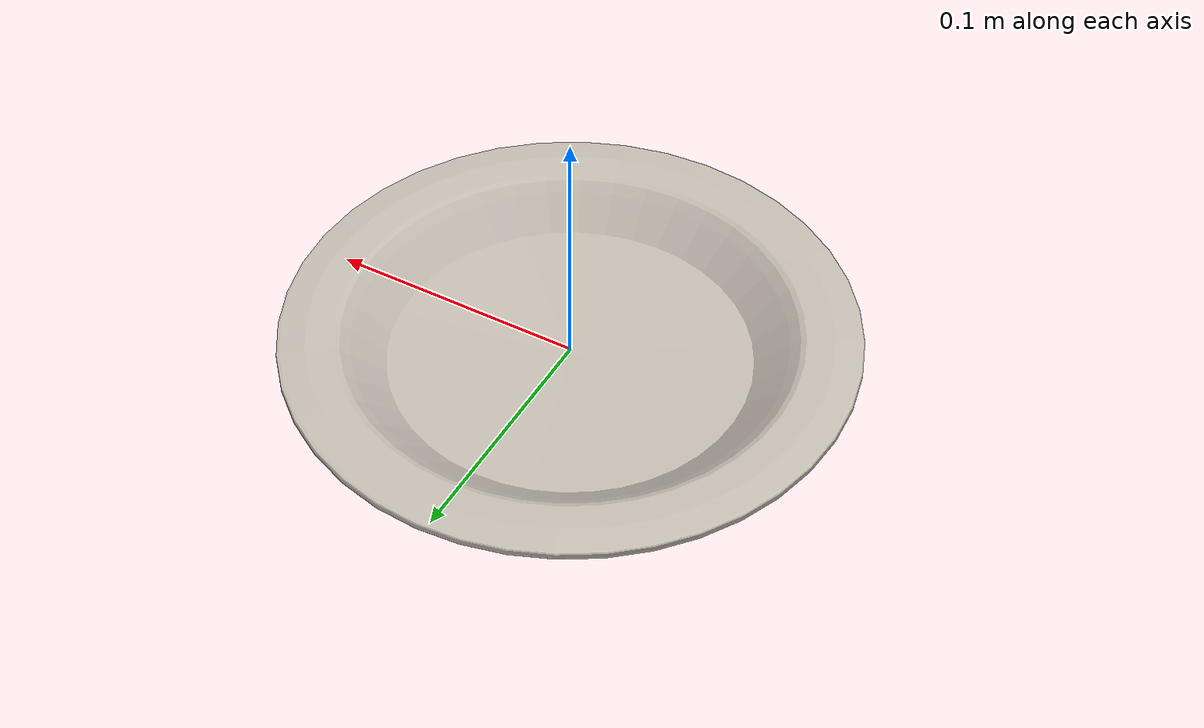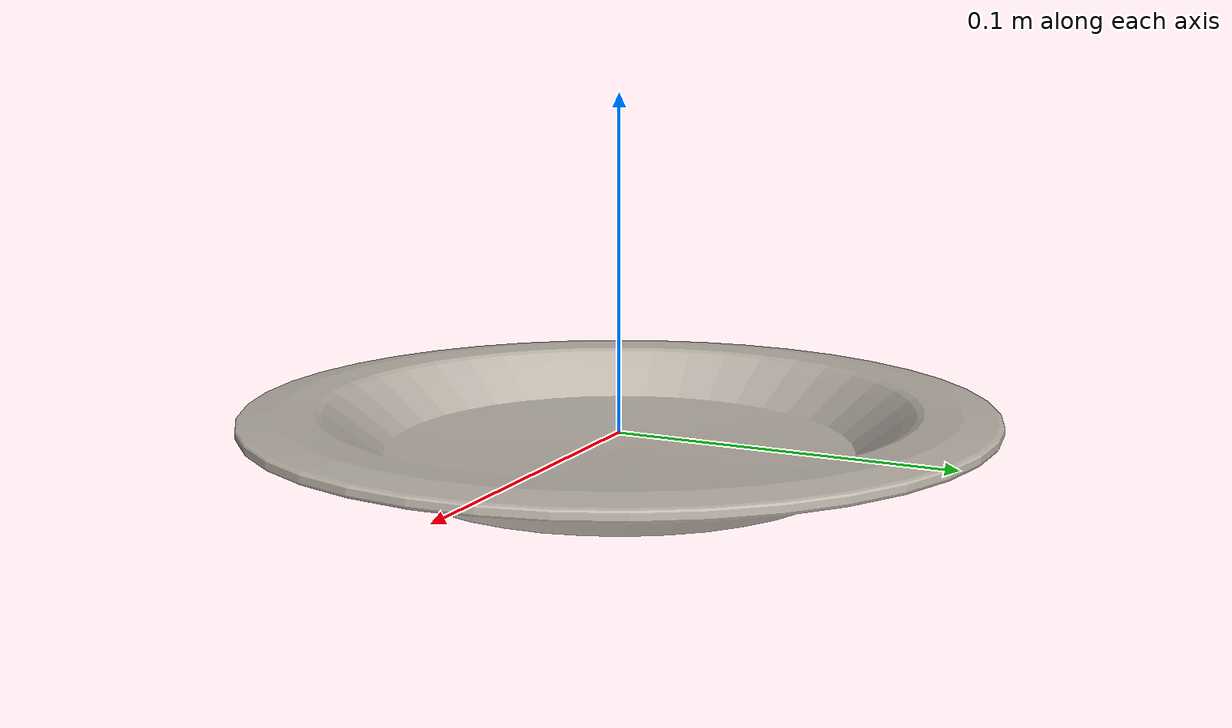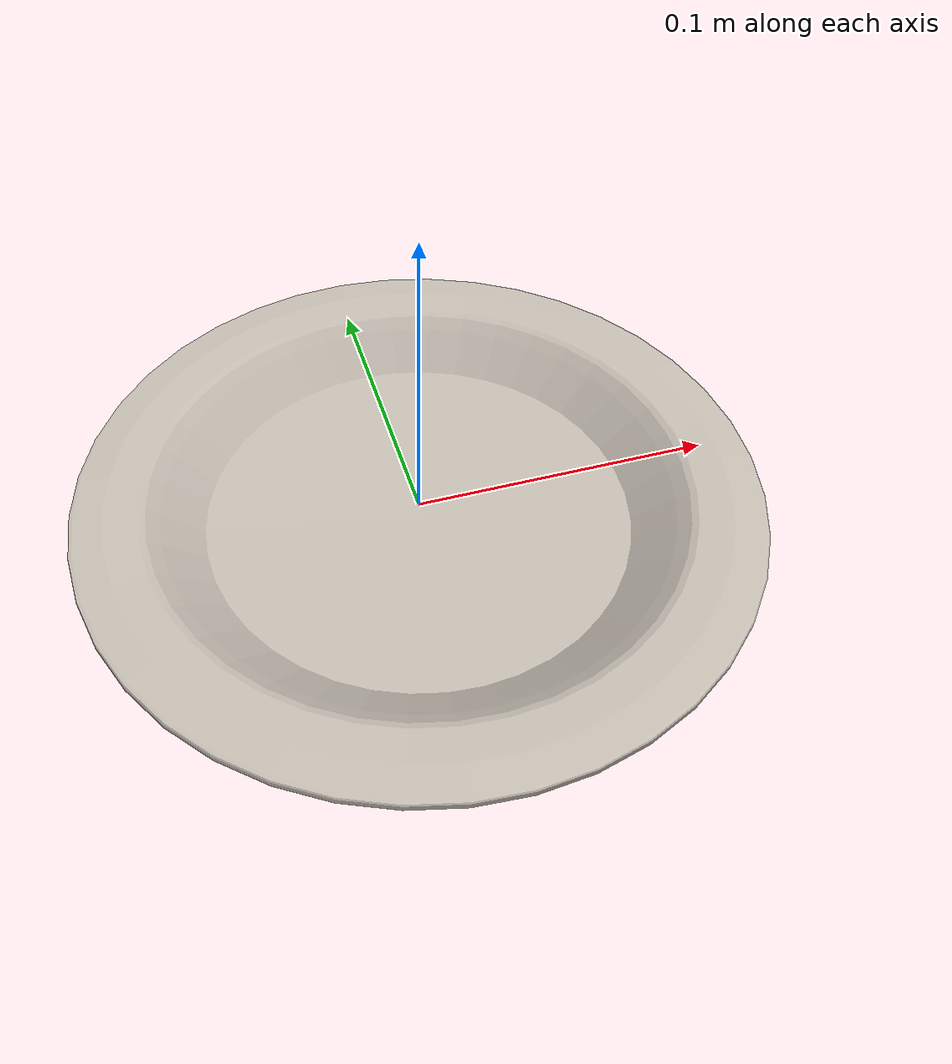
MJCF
<mujoco model="plate_8">
  <asset>
    <mesh file="visual/model_normalized_0.obj" name="model_normalized_0_vis" scale="0.22 0.22 0.22" refquat="1.0 0.0 0.0 0.0" />
    <mesh file="collision/model_normalized_collision_22.obj" name="model_normalized_collision_22._coll" scale="0.22 0.22 0.22" refquat="1.0 0.0 0.0 0.0" />
    <mesh file="collision/model_normalized_collision_23.obj" name="model_normalized_collision_23._coll" scale="0.22 0.22 0.22" refquat="1.0 0.0 0.0 0.0" />
    <mesh file="collision/model_normalized_collision_21.obj" name="model_normalized_collision_21._coll" scale="0.22 0.22 0.22" refquat="1.0 0.0 0.0 0.0" />
    <mesh file="collision/model_normalized_collision_20.obj" name="model_normalized_collision_20._coll" scale="0.22 0.22 0.22" refquat="1.0 0.0 0.0 0.0" />
    <mesh file="collision/model_normalized_collision_24.obj" name="model_normalized_collision_24._coll" scale="0.22 0.22 0.22" refquat="1.0 0.0 0.0 0.0" />
    <mesh file="collision/model_normalized_collision_30.obj" name="model_normalized_collision_30._coll" scale="0.22 0.22 0.22" refquat="1.0 0.0 0.0 0.0" />
    <mesh file="collision/model_normalized_collision_18.obj" name="model_normalized_collision_18._coll" scale="0.22 0.22 0.22" refquat="1.0 0.0 0.0 0.0" />
    <mesh file="collision/model_normalized_collision_19.obj" name="model_normalized_collision_19._coll" scale="0.22 0.22 0.22" refquat="1.0 0.0 0.0 0.0" />
    <mesh file="collision/model_normalized_collision_31.obj" name="model_normalized_collision_31._coll" scale="0.22 0.22 0.22" refquat="1.0 0.0 0.0 0.0" />
    <mesh file="collision/model_normalized_collision_25.obj" name="model_normalized_collision_25._coll" scale="0.22 0.22 0.22" refquat="1.0 0.0 0.0 0.0" />
    <mesh file="collision/model_normalized_collision_27.obj" name="model_normalized_collision_27._coll" scale="0.22 0.22 0.22" refquat="1.0 0.0 0.0 0.0" />
    <mesh file="collision/model_normalized_collision_26.obj" name="model_normalized_collision_26._coll" scale="0.22 0.22 0.22" refquat="1.0 0.0 0.0 0.0" />
    <mesh file="collision/model_normalized_collision_9.obj" name="model_normalized_collision_9._coll" scale="0.22 0.22 0.22" refquat="1.0 0.0 0.0 0.0" />
    <mesh file="collision/model_normalized_collision_8.obj" name="model_normalized_collision_8._coll" scale="0.22 0.22 0.22" refquat="1.0 0.0 0.0 0.0" />
    <mesh file="collision/model_normalized_collision_6.obj" name="model_normalized_collision_6._coll" scale="0.22 0.22 0.22" refquat="1.0 0.0 0.0 0.0" />
    <mesh file="collision/model_normalized_collision_7.obj" name="model_normalized_collision_7._coll" scale="0.22 0.22 0.22" refquat="1.0 0.0 0.0 0.0" />
    <mesh file="collision/model_normalized_collision_5.obj" name="model_normalized_collision_5._coll" scale="0.22 0.22 0.22" refquat="1.0 0.0 0.0 0.0" />
    <mesh file="collision/model_normalized_collision_4.obj" name="model_normalized_collision_4._coll" scale="0.22 0.22 0.22" refquat="1.0 0.0 0.0 0.0" />
    <mesh file="collision/model_normalized_collision_0.obj" name="model_normalized_collision_0._coll" scale="0.22 0.22 0.22" refquat="1.0 0.0 0.0 0.0" />
    <mesh file="collision/model_normalized_collision_1.obj" name="model_normalized_collision_1._coll" scale="0.22 0.22 0.22" refquat="1.0 0.0 0.0 0.0" />
    <mesh file="collision/model_normalized_collision_3.obj" name="model_normalized_collision_3._coll" scale="0.22 0.22 0.22" refquat="1.0 0.0 0.0 0.0" />
    <mesh file="collision/model_normalized_collision_2.obj" name="model_normalized_collision_2._coll" scale="0.22 0.22 0.22" refquat="1.0 0.0 0.0 0.0" />
    <mesh file="collision/model_normalized_collision_17.obj" name="model_normalized_collision_17._coll" scale="0.22 0.22 0.22" refquat="1.0 0.0 0.0 0.0" />
    <mesh file="collision/model_normalized_collision_16.obj" name="model_normalized_collision_16._coll" scale="0.22 0.22 0.22" refquat="1.0 0.0 0.0 0.0" />
    <mesh file="collision/model_normalized_collision_28.obj" name="model_normalized_collision_28._coll" scale="0.22 0.22 0.22" refquat="1.0 0.0 0.0 0.0" />
    <mesh file="collision/model_normalized_collision_14.obj" name="model_normalized_collision_14._coll" scale="0.22 0.22 0.22" refquat="1.0 0.0 0.0 0.0" />
    <mesh file="collision/model_normalized_collision_15.obj" name="model_normalized_collision_15._coll" scale="0.22 0.22 0.22" refquat="1.0 0.0 0.0 0.0" />
    <mesh file="collision/model_normalized_collision_29.obj" name="model_normalized_collision_29._coll" scale="0.22 0.22 0.22" refquat="1.0 0.0 0.0 0.0" />
    <mesh file="collision/model_normalized_collision_11.obj" name="model_normalized_collision_11._coll" scale="0.22 0.22 0.22" refquat="1.0 0.0 0.0 0.0" />
    <mesh file="collision/model_normalized_collision_10.obj" name="model_normalized_collision_10._coll" scale="0.22 0.22 0.22" refquat="1.0 0.0 0.0 0.0" />
    <mesh file="collision/model_normalized_collision_12.obj" name="model_normalized_collision_12._coll" scale="0.22 0.22 0.22" refquat="1.0 0.0 0.0 0.0" />
    <mesh file="collision/model_normalized_collision_13.obj" name="model_normalized_collision_13._coll" scale="0.22 0.22 0.22" refquat="1.0 0.0 0.0 0.0" />
    <texture type="2d" name="image0" file="visual/image0.png" />
    <material name="lambert1.131" texture="image0" specular="0.5" shininess="0.25" />
  </asset>
  <worldbody>
  <body>
      <body name="object">
        <geom solimp="0.998 0.998 0.001" solref="0.001 1" density="100" friction="0.95 0.3 0.1" type="mesh" mesh="model_normalized_0_vis" conaffinity="0" contype="0" group="1" material="lambert1.131" />
        <geom solimp="0.998 0.998 0.001" solref="0.001 1" density="100" friction="0.95 0.3 0.1" type="mesh" mesh="model_normalized_collision_22._coll" group="0" rgba="0.8 0.8 0.8 0.0" />
        <geom solimp="0.998 0.998 0.001" solref="0.001 1" density="100" friction="0.95 0.3 0.1" type="mesh" mesh="model_normalized_collision_23._coll" group="0" rgba="0.8 0.8 0.8 0.0" />
        <geom solimp="0.998 0.998 0.001" solref="0.001 1" density="100" friction="0.95 0.3 0.1" type="mesh" mesh="model_normalized_collision_21._coll" group="0" rgba="0.8 0.8 0.8 0.0" />
        <geom solimp="0.998 0.998 0.001" solref="0.001 1" density="100" friction="0.95 0.3 0.1" type="mesh" mesh="model_normalized_collision_20._coll" group="0" rgba="0.8 0.8 0.8 0.0" />
        <geom solimp="0.998 0.998 0.001" solref="0.001 1" density="100" friction="0.95 0.3 0.1" type="mesh" mesh="model_normalized_collision_24._coll" group="0" rgba="0.8 0.8 0.8 0.0" />
        <geom solimp="0.998 0.998 0.001" solref="0.001 1" density="100" friction="0.95 0.3 0.1" type="mesh" mesh="model_normalized_collision_30._coll" group="0" rgba="0.8 0.8 0.8 0.0" />
        <geom solimp="0.998 0.998 0.001" solref="0.001 1" density="100" friction="0.95 0.3 0.1" type="mesh" mesh="model_normalized_collision_18._coll" group="0" rgba="0.8 0.8 0.8 0.0" />
        <geom solimp="0.998 0.998 0.001" solref="0.001 1" density="100" friction="0.95 0.3 0.1" type="mesh" mesh="model_normalized_collision_19._coll" group="0" rgba="0.8 0.8 0.8 0.0" />
        <geom solimp="0.998 0.998 0.001" solref="0.001 1" density="100" friction="0.95 0.3 0.1" type="mesh" mesh="model_normalized_collision_31._coll" group="0" rgba="0.8 0.8 0.8 0.0" />
        <geom solimp="0.998 0.998 0.001" solref="0.001 1" density="100" friction="0.95 0.3 0.1" type="mesh" mesh="model_normalized_collision_25._coll" group="0" rgba="0.8 0.8 0.8 0.0" />
        <geom solimp="0.998 0.998 0.001" solref="0.001 1" density="100" friction="0.95 0.3 0.1" type="mesh" mesh="model_normalized_collision_27._coll" group="0" rgba="0.8 0.8 0.8 0.0" />
        <geom solimp="0.998 0.998 0.001" solref="0.001 1" density="100" friction="0.95 0.3 0.1" type="mesh" mesh="model_normalized_collision_26._coll" group="0" rgba="0.8 0.8 0.8 0.0" />
        <geom solimp="0.998 0.998 0.001" solref="0.001 1" density="100" friction="0.95 0.3 0.1" type="mesh" mesh="model_normalized_collision_9._coll" group="0" rgba="0.8 0.8 0.8 0.0" />
        <geom solimp="0.998 0.998 0.001" solref="0.001 1" density="100" friction="0.95 0.3 0.1" type="mesh" mesh="model_normalized_collision_8._coll" group="0" rgba="0.8 0.8 0.8 0.0" />
        <geom solimp="0.998 0.998 0.001" solref="0.001 1" density="100" friction="0.95 0.3 0.1" type="mesh" mesh="model_normalized_collision_6._coll" group="0" rgba="0.8 0.8 0.8 0.0" />
        <geom solimp="0.998 0.998 0.001" solref="0.001 1" density="100" friction="0.95 0.3 0.1" type="mesh" mesh="model_normalized_collision_7._coll" group="0" rgba="0.8 0.8 0.8 0.0" />
        <geom solimp="0.998 0.998 0.001" solref="0.001 1" density="100" friction="0.95 0.3 0.1" type="mesh" mesh="model_normalized_collision_5._coll" group="0" rgba="0.8 0.8 0.8 0.0" />
        <geom solimp="0.998 0.998 0.001" solref="0.001 1" density="100" friction="0.95 0.3 0.1" type="mesh" mesh="model_normalized_collision_4._coll" group="0" rgba="0.8 0.8 0.8 0.0" />
        <geom solimp="0.998 0.998 0.001" solref="0.001 1" density="100" friction="0.95 0.3 0.1" type="mesh" mesh="model_normalized_collision_0._coll" group="0" rgba="0.8 0.8 0.8 0.0" />
        <geom solimp="0.998 0.998 0.001" solref="0.001 1" density="100" friction="0.95 0.3 0.1" type="mesh" mesh="model_normalized_collision_1._coll" group="0" rgba="0.8 0.8 0.8 0.0" />
        <geom solimp="0.998 0.998 0.001" solref="0.001 1" density="100" friction="0.95 0.3 0.1" type="mesh" mesh="model_normalized_collision_3._coll" group="0" rgba="0.8 0.8 0.8 0.0" />
        <geom solimp="0.998 0.998 0.001" solref="0.001 1" density="100" friction="0.95 0.3 0.1" type="mesh" mesh="model_normalized_collision_2._coll" group="0" rgba="0.8 0.8 0.8 0.0" />
        <geom solimp="0.998 0.998 0.001" solref="0.001 1" density="100" friction="0.95 0.3 0.1" type="mesh" mesh="model_normalized_collision_17._coll" group="0" rgba="0.8 0.8 0.8 0.0" />
        <geom solimp="0.998 0.998 0.001" solref="0.001 1" density="100" friction="0.95 0.3 0.1" type="mesh" mesh="model_normalized_collision_16._coll" group="0" rgba="0.8 0.8 0.8 0.0" />
        <geom solimp="0.998 0.998 0.001" solref="0.001 1" density="100" friction="0.95 0.3 0.1" type="mesh" mesh="model_normalized_collision_28._coll" group="0" rgba="0.8 0.8 0.8 0.0" />
        <geom solimp="0.998 0.998 0.001" solref="0.001 1" density="100" friction="0.95 0.3 0.1" type="mesh" mesh="model_normalized_collision_14._coll" group="0" rgba="0.8 0.8 0.8 0.0" />
        <geom solimp="0.998 0.998 0.001" solref="0.001 1" density="100" friction="0.95 0.3 0.1" type="mesh" mesh="model_normalized_collision_15._coll" group="0" rgba="0.8 0.8 0.8 0.0" />
        <geom solimp="0.998 0.998 0.001" solref="0.001 1" density="100" friction="0.95 0.3 0.1" type="mesh" mesh="model_normalized_collision_29._coll" group="0" rgba="0.8 0.8 0.8 0.0" />
        <geom solimp="0.998 0.998 0.001" solref="0.001 1" density="100" friction="0.95 0.3 0.1" type="mesh" mesh="model_normalized_collision_11._coll" group="0" rgba="0.8 0.8 0.8 0.0" />
        <geom solimp="0.998 0.998 0.001" solref="0.001 1" density="100" friction="0.95 0.3 0.1" type="mesh" mesh="model_normalized_collision_10._coll" group="0" rgba="0.8 0.8 0.8 0.0" />
        <geom solimp="0.998 0.998 0.001" solref="0.001 1" density="100" friction="0.95 0.3 0.1" type="mesh" mesh="model_normalized_collision_12._coll" group="0" rgba="0.8 0.8 0.8 0.0" />
        <geom solimp="0.998 0.998 0.001" solref="0.001 1" density="100" friction="0.95 0.3 0.1" type="mesh" mesh="model_normalized_collision_13._coll" group="0" rgba="0.8 0.8 0.8 0.0" />
      </body>
      <site rgba="0 0 0 0" size="0.005" pos="-1.248749999958887e-07 1.3320000000177634e-07 -0.00861037175" name="bottom_site" />
      <site rgba="0 0 0 0" size="0.005" pos="-1.248749999958887e-07 1.3320000000177634e-07 0.008587513150000002" name="top_site" />
      <site rgba="0 0 0 0" size="0.005" pos="0.09064567655 0.09064593925 -1.142930000000016e-05" name="horizontal_radius_site" />
    </body>
    </worldbody>
</mujoco>
